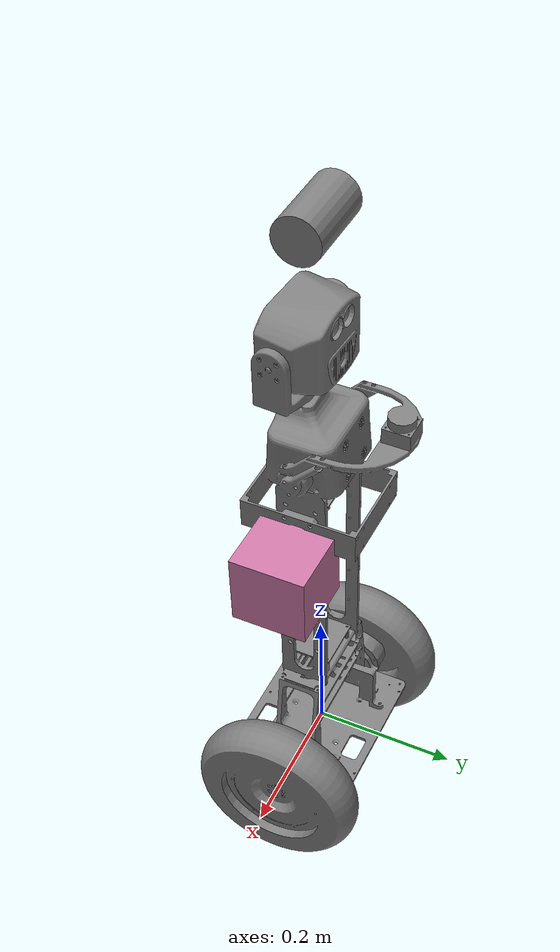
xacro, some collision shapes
<?xml version="1.0" encoding="utf-8"?>
  <!--A FILE THAT CONTAINS ALL THINGS ABOUT THIS ROBOT. YOU CAN DIRECTLY USE IT BY CHANGE THE NAME IN LAUNCH FILE TO FINAL.XACRO -->
<robot name="final" xmlns:xacro="http://www.ros.org/wiki/xacro">
  <!-- Include the camera Xacro file -->
  <xacro:include filename="camera.xacro"/>

  <!-- Include the Hokuyo laser Xacro file -->
  <xacro:include filename="hokuyo_gpu.xacro"/>

  <!-- Define the camera macro with topic name -->
  <xacro:cam name="camera" parent="H" xyz="0 0 0.85" rpy="0 0 0" topic_name="camera/image_raw"/>

  <!-- Base link -->
  <link name="base_link">
    <inertial>
      <origin xyz="0 0 0" rpy="0 0 0"/>
      <mass value="1.36136077855937"/>
      <inertia ixx="0.081967334564842" ixy="-3.4210723680635E-06" ixz="-3.91284547047023E-05" iyy="0.0884786743192248" iyz="-0.00231861382459098" izz="0.0107270419219255"/>
    </inertial>
    <visual>
      <origin xyz="0 0 0" rpy="0 0 0"/>
      <geometry>
        <mesh filename="package://final/meshes/base_link.STL"/>
      </geometry>
      <material name="grey"/>
    </visual>
    <collision>
      <origin xyz="0 0 0" rpy="0 0 0"/>
      <geometry>
        <mesh filename="package://final/meshes/base_link.STL"/>
      </geometry>
    </collision>
  </link>

  <!-- Right wheel -->
  <link name="RW">
    <inertial>
      <origin xyz="0 0 0" rpy="0 0 0"/>
      <mass value="1.66362187408782"/>
      <inertia ixx="0.0149331440705645" ixy="-7.0310527599993E-19" ixz="-3.56400971635067E-17" iyy="0.00789937751316691" iyz="-1.07234377907859E-18" izz="0.00789937751316691"/>
    </inertial>
    <visual>
      <origin xyz="0 0 0" rpy="0 0 0"/>
      <geometry>
        <mesh filename="package://final/meshes/RW.STL"/>
      </geometry>
      <material name="grey"/>
    </visual>
    <collision>
      <origin xyz="0 0 0" rpy="0 0 0"/>
      <geometry>
        <mesh filename="package://final/meshes/RW.STL"/>
      </geometry>
    </collision>
  </link>
  <joint name="RWJ" type="continuous">
    <origin xyz="0 0 0" rpy="0 0 0"/>
    <parent link="base_link"/>
    <child link="RW"/>
    <axis xyz="-1 0 0"/>
    <hardwareInterface>EffortJointInterface</hardwareInterface>
  </joint>

  <!-- Left wheel -->
  <link name="LW">
    <inertial>
      <origin xyz="0 0 0" rpy="0 0 0"/>
      <mass value="1.66362187408782"/>
      <inertia ixx="0.0149331440705645" ixy="-1.65714609173788E-17" ixz="-3.18068539323175E-17" iyy="0.00789937751316691" iyz="8.92935627369466E-19" izz="0.00789937751316691"/>
    </inertial>
    <visual>
      <origin xyz="0 0 0" rpy="0 0 0"/>
      <geometry>
        <mesh filename="package://final/meshes/LW.STL"/>
      </geometry>
      <material name="grey"/>
    </visual>
    <collision>
      <origin xyz="0 0 0" rpy="0 0 0"/>
      <geometry>
        <mesh filename="package://final/meshes/LW.STL"/>
      </geometry>
    </collision>
  </link>
  <joint name="LWJ" type="continuous">
    <origin xyz="0 0 0" rpy="0 0 0"/>
    <parent link="base_link"/>
    <child link="LW"/>
    <axis xyz="-1 0 0"/>
    <hardwareInterface>EffortJointInterface</hardwareInterface>
  </joint>

  <!-- H link -->
  <link name="H">
    <inertial>
      <origin xyz="0 0 0" rpy="0 0 0"/>
      <mass value="0.44614352354859"/>
      <inertia ixx="0.000652294754639145" ixy="4.03458294640683E-05" ixz="3.77748545659174E-06" iyy="0.00124994464758745" iyz="-8.60157885805727E-06" izz="0.00109660895945627"/>
    </inertial>
    <visual>
      <origin xyz="0 0 0" rpy="0 0 0"/>
      <geometry>
        <mesh filename="package://final/meshes/H.STL"/>
      </geometry>
      <material name="grey"/>
    </visual>
    <collision>
      <origin xyz="0 0 0" rpy="0 0 0"/>
      <geometry>
        <mesh filename="package://final/meshes/H.STL"/>
      </geometry>
    </collision>
  </link>
  <joint name="HJ" type="continuous">
    <origin xyz="0 0 0" rpy="0 0 0"/>
    <parent link="base_link"/>
    <child link="H"/>
    <axis xyz="0 0 1"/>
    <hardwareInterface>PositionJointInterface</hardwareInterface>
  </joint>

  <!-- Camera link -->
  <link name="camera_link">
    <inertial>
      <origin xyz="0 0 0" rpy="0 0 0"/>
      <mass value="0.0"/>
      <inertia ixx="0.001" ixy="0" ixz="0" iyy="0.001" iyz="0" izz="0.001"/>
    </inertial>
    <visual>
      <origin xyz="0 0 0" rpy="0 0 0"/>
      <geometry>
        <box size="0 0 0"/>
      </geometry>
      <material name="grey">
        <color rgba="0.5 0.5 0.5 1"/>
      </material>
    </visual>
    <collision>
      <origin xyz="0 0 0" rpy="0 0 0"/>
      <geometry>
        <box size="0 0 0"/>
      </geometry>
    </collision>
  </link>
  <joint name="camera_joint" type="fixed">
    <origin xyz="0 0 1" rpy="0 0 0"/>
    <parent link="H"/>
    <child link="camera_link"/>
  </joint>

  <!-- Hokuyo Laser link -->
  <xacro:laser_gpu name="hokuyo_link" parent="H" xyz="0.1 0.0 0.4" rpy="0 0 0" meshes="$(find final)/meshes">
    <!-- Adjust xyz and rpy values as per your robot model -->
  </xacro:laser_gpu>

  <!-- Differential drive transmission -->
  <transmission name="RWJ_trans">
    <type>transmission_interface/SimpleTransmission</type>
    <joint name="RWJ">
      <hardwareInterface>hardware_interface/VelocityJointInterface</hardwareInterface>
    </joint>
    <actuator name="right_motor">
      <mechanicalReduction>1</mechanicalReduction>
    </actuator>
  </transmission>

    <transmission name="LWJ_trans">
    <type>transmission_interface/SimpleTransmission</type>
    <joint name="LWJ">
      <hardwareInterface>hardware_interface/VelocityJointInterface</hardwareInterface>
    </joint>
    <actuator name="left_motor">
      <mechanicalReduction>1</mechanicalReduction>
    </actuator>
  </transmission>

   <transmission name="HJ_trans" >
    <type>transmission_interface/SimpleTransmission</type>
    <joint name="HJ">
      <hardwareInterface>hardware_interface/VelocityJointInterface</hardwareInterface>
    </joint>
    <actuator name="HJ_motor">
      <mechanicalReduction>1</mechanicalReduction>
    </actuator>
  </transmission>
<gazebo>
        <plugin name="gazebo_ros_control" filename="libgazebo_ros_control.so">
            <controlPeriod>0.001</controlPeriod>
            <legacyModeNS>false</legacyModeNS>
        </plugin>
</gazebo>
  <gazebo>
  <plugin name="gazebo_ros_diff_drive" filename="libgazebo_ros_diff_drive.so">
    <ros>
      <namespace>/final</namespace>
      <remapping>cmd_vel:=cmd_vel</remapping>
    </ros>
    <updateRate>100.0</updateRate>
    <leftJoint>LWJ</leftJoint>
    <rightJoint>RWJ</rightJoint>
    <wheelSeparation>0.287263490418646</wheelSeparation>
    <wheelDiameter>0.07181587263</wheelDiameter>
    <torque>5.0</torque>
    <commandTopic>cmd_vel</commandTopic>
    <odometryTopic>odom</odometryTopic>
    <odometryFrame>odom</odometryFrame>
    <robotBaseFrame>base_link</robotBaseFrame>
    <publishTF>true</publishTF>
  </plugin>
  </gazebo>

</robot>

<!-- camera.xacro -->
<robot xmlns:xacro="http://www.ros.org/wiki/xacro">

  <!-- Camera -->
  <xacro:macro name="cam" params="name parent xyz rpy topic_name">

    <joint name="${parent}_${name}_joint" type="fixed">
      <axis xyz="0 0 1" />
      <origin xyz="${xyz}" rpy="${rpy}"/>
      <parent link="${parent}"/>
      <child link="${name}"/>
    </joint>

    <!-- Camera -->
    <link name="${name}">
      <inertial>
        <mass value="1e-5" />
        <origin xyz="0 0 0" rpy="0 0 0"/>
        <inertia ixx="1e-6" ixy="0" ixz="0" iyy="1e-6" iyz="0" izz="1e-6" />
      </inertial>
      <visual>
        <origin xyz="0 0 0" rpy="0 1.57 0"/>
        <geometry>
          <cylinder radius="0.03" length="0.1"/>
        </geometry>
        <material name="grey"/>
      </visual>
      <collision>
        <origin xyz="0 0 0" rpy="0 1.57 0"/>
        <geometry>
          <cylinder radius="0.03" length="0.1"/>
        </geometry>
      </collision>
    </link>
    <gazebo reference="${name}">
      <material value="Gazebo/Grey"/>
    </gazebo>

    <gazebo reference="${name}">
      <sensor type="camera" name="camera1">
        <update_rate>30.0</update_rate>
        <camera name="head">
          <horizontal_fov>1.92</horizontal_fov>
          <image>
            <width>512</width>
            <height>256</height>
            <format>R8G8B8</format>
          </image>
          <clip>
            <near>0.02</near>
            <far>300</far>
          </clip>
          <noise>
            <type>gaussian</type>
            <mean>0.0</mean>
            <stddev>0.007</stddev>
          </noise>
        </camera>
        <plugin name="camera_controller" filename="libgazebo_ros_camera.so">
          <robotNamespace></robotNamespace>
          <alwaysOn>true</alwaysOn>
          <updateRate>0.0</updateRate>
          <cameraName>${name}</cameraName>
          <imageTopicName>${topic_name}</imageTopicName>
          <cameraInfoTopicName>camera_info</cameraInfoTopicName>
          <frameName>${name}</frameName>
          <hackBaseline>0.07</hackBaseline>
          <distortionK1>0.0</distortionK1>
          <distortionK2>0.0</distortionK2>
          <distortionK3>0.0</distortionK3>
          <distortionT1>0.0</distortionT1>
          <distortionT2>0.0</distortionT2>
        </plugin>
      </sensor>
    </gazebo>

  </xacro:macro>
</robot>

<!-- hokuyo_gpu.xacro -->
<robot xmlns:xacro="http://www.ros.org/wiki/xacro">

<!-- Front Laser -->
<xacro:macro name="laser_gpu" params="name parent xyz rpy meshes" >

  <joint name="${parent}_${name}_joint" type="fixed">
      <axis xyz="0 0 1" />
      <origin xyz="${xyz}" rpy="${rpy}"/>
      <parent link="${parent}"/>
      <child link="${name}"/>
    </joint>

    <link name="${name}">
      <collision>
        <origin xyz="0 0 0" rpy="0 0 0"/>
        <geometry>
          <box size="0.1 0.1 0.1"/>
        </geometry>
      </collision>
      <visual>
        <origin xyz="0 0 0" rpy="0 0 0"/>
        <geometry>
          <mesh filename="package://final/meshes/hokuyo.dae"/>
        </geometry>
      </visual>
      <inertial>
        <mass value="1e-5" />
        <origin xyz="0 0 0" rpy="0 0 0"/>
        <inertia ixx="1e-6" ixy="0" ixz="0" iyy="1e-6" iyz="0" izz="1e-6" />
      </inertial>
    </link>

    <gazebo reference="${name}">
    <sensor type="gpu_ray" name="head_hokuyo_sensor">
      <pose>0 0 0 0 0 0</pose>
      <always_on>1</always_on>
      <update_rate>30</update_rate>
      <visualize>true</visualize>
      <ray>
        <scan>
          <horizontal>
            <resolution>1</resolution>
            <max_angle>2.0944</max_angle> <!-- 120 Degree -->
            <min_angle>-2.0944</min_angle> <!-- -120 Degree -->
            <samples>683</samples>
          </horizontal>
        </scan>
        <range>
          <min>0.05</min>
          <max>100</max>
          <resolution>0.01</resolution>
        </range>
        <noise>
          <type>gaussian</type>
          <mean>0.0</mean>
          <stddev>0.01</stddev>
        </noise>
      </ray>
      <plugin name="gazebo_ros_head_hokuyo_controller" filename="libgazebo_ros_gpu_laser.so">
        <robotNamespace></robotNamespace>
        <topicName>scan</topicName> <!-- Specify the topic name here -->
        <frameName>${name}</frameName>
      </plugin>
    </sensor>
    </gazebo>

</xacro:macro>

</robot>
